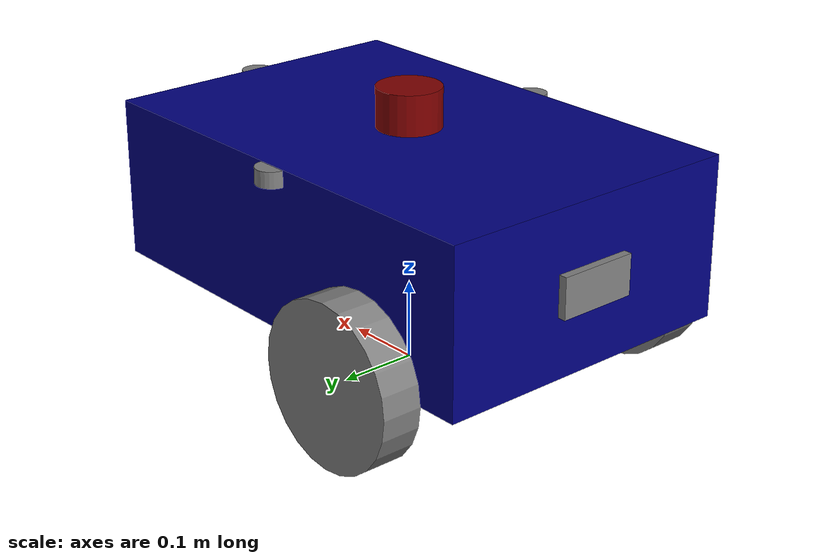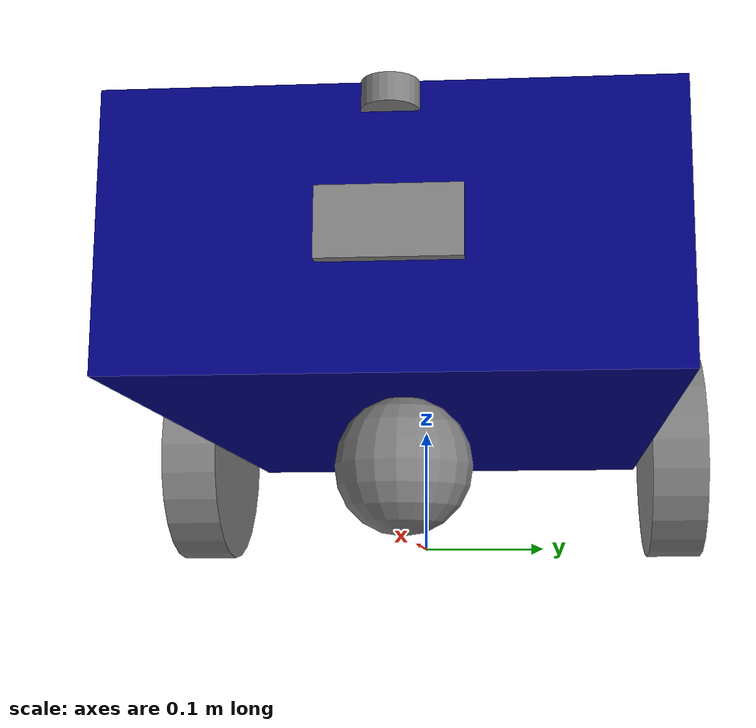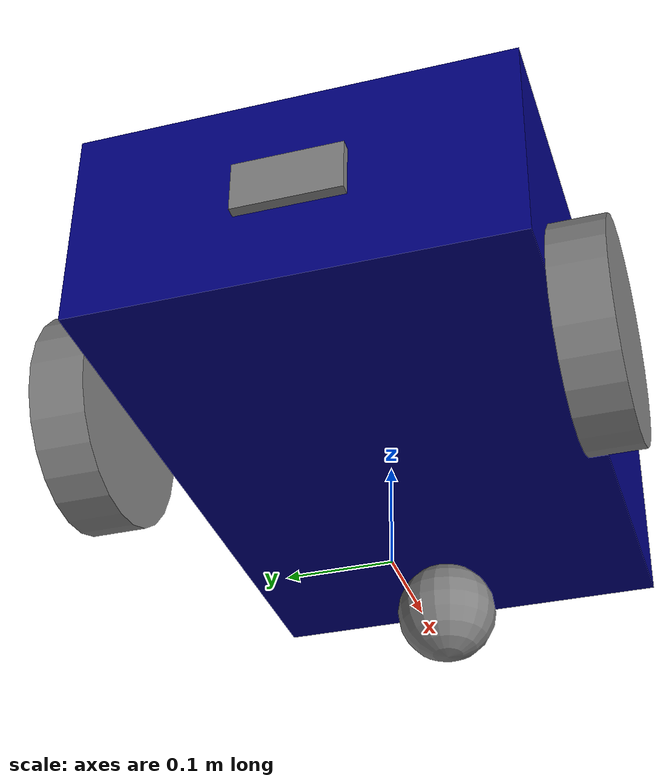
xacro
<?xml version="1.0"?>
<robot name="my_robot" xmlns:xacro="http://www.ros.org/wiki/xacro">

    <xacro:include filename="common_properties.xacro" />
    <xacro:include filename="mobile_base.xacro" />
    <xacro:include filename="mobile_base_gazebo.xacro" />

    <xacro:arg name="with_depth_cameras" default="true" />
    <xacro:arg name="with_rear_camera" default="true" />
    <xacro:arg name="cam_width" default="320" />
    <xacro:arg name="cam_height" default="240" />
    <xacro:arg name="cam_rate" default="10.0" />
    <xacro:arg name="cam_visualize" default="false" />
    <xacro:arg name="cam_hfov" default="1.5" />
    <xacro:arg name="cam_noise_stddev" default="0.001" />
    <xacro:if value="$(arg with_depth_cameras)">
        <xacro:include filename="camera.xacro" />
    </xacro:if>

    <xacro:include filename="lidar.xacro" />
    <xacro:include filename="imu.xacro" />
    <xacro:include filename="sonic_radar.xacro" />
    <xacro:include filename="gps_module.xacro" />

</robot>

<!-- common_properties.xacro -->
<robot xmlns:xacro="http://www.ros.org/wiki/xacro">

    <material name ="blue">
        <color rgba="0 0 0.5 1" />
    </material>

    <material name ="grey">
        <color rgba="0.5 0.5 0.5 1" />
    </material>

    <material name ="red">
        <color rgba="0.5 0 0 1" />
    </material>

    <xacro:macro name="box_inertia" params="m l w h xyz rpy">
        <inertial>
            <origin xyz="${xyz}" rpy="${rpy}" />
            <mass value="${m}" />
            <inertia ixx="${(m/12) * (h*h + l*l)}" ixy="0" ixz="0"
                     iyy="${(m/12) * (w*w + l*l)}" iyz="0"
                     izz="${(m/12) * (w*w + h*h)}" />
        </inertial>
    </xacro:macro>

    <xacro:macro name="cylinder_inertia" params="m r h xyz rpy">
        <inertial>
            <origin xyz="${xyz}" rpy="${rpy}" />
            <mass value="${m}" />
            <inertia ixx="${(m/12) * (3*r*r + h*h)}" ixy="0" ixz="0"
                     iyy="${(m/12) * (3*r*r + h*h)}" iyz="0"
                     izz="${(m/2) * (r*r)}" />
        </inertial>
    </xacro:macro>

    <xacro:macro name="spere_inertia" params="m r xyz rpy">
        <inertial>
            <origin xyz="${xyz}" rpy="${rpy}" />
            <mass value="${m}" />
            <inertia ixx="${(2*m/5) * (r*r)}" ixy="0" ixz="0"
                     iyy="${(2*m/5) * (r*r)}"  iyz="0"
                     izz="${(2*m/5) * (r*r)}" />
        </inertial>
    </xacro:macro>

</robot>

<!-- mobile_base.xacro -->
<robot xmlns:xacro="http://www.ros.org/wiki/xacro">

    <xacro:property name="base_length" value="0.6" />
    <xacro:property name="base_width" value="0.4" />
    <xacro:property name="base_height" value="0.2" />
    <xacro:property name="wheel_radius" value="0.1" />
    <xacro:property name="wheel_length" value="0.05" />

    <xacro:macro name="wheel_link" params="prefix">
        <link name="${prefix}_wheel_link">
            <visual>
                <geometry>
                    <cylinder radius="${wheel_radius}" length="${wheel_length}" />
                </geometry>
                <origin xyz="0 0 0" rpy="${pi / 2.0} 0 0" />
                <material name="grey" />
            </visual>
            <collision>
                <geometry>
                    <cylinder radius="${wheel_radius}" length="${wheel_length}" />
                </geometry>
                <origin xyz="0 0 0" rpy="${pi / 2.0} 0 0" />
            </collision>
            <xacro:cylinder_inertia m="1.0" r="${2*wheel_radius}" h="${2*wheel_length}"
                                    xyz="0 0 0" rpy="${pi / 2.0} 0 0" />
        </link>
    </xacro:macro>

    <link name="footprint_link" />

    <link name="base_link">
        <visual>
            <geometry>
                <box size="${base_length} ${base_width} ${base_height}" />
            </geometry>
            <origin xyz="0 0 ${(base_height / 2.0)}" rpy="0 0 0" />
            <material name="blue" />
        </visual>
        <collision>
            <geometry>
                <box size="${base_length} ${base_width} ${base_height}" />
            </geometry>
            <origin xyz="0 0 ${(base_height / 2.0)}" rpy="0 0 0" />
        </collision>
        <xacro:box_inertia m="5.0" l="${2*base_length}" w="${2*base_width}" h="${2*base_height}"
                           xyz="0 0 ${(base_height / 2.0)}" rpy="0 0 0" />
    </link>

    <joint name="base_footprint_joint" type="fixed">
        <parent link="footprint_link" />
        <child link="base_link" />
        <origin xyz="0 0 ${wheel_radius}" rpy="0 0 0" />
        <axis xyz="0 0 0" />
    </joint>

    <xacro:wheel_link prefix="right" />
    <xacro:wheel_link prefix="left" />

    <link name="caster_wheel_link">
        <visual>
            <geometry>
                <sphere radius="${wheel_radius / 2.0}" />
            </geometry>
            <origin xyz="0 0 0" rpy="0 0 0" />
            <material name="grey" />
        </visual>
        <collision>
            <geometry>
                <sphere radius="${wheel_radius / 2.0}" />
            </geometry>
            <origin xyz="0 0 0" rpy="0 0 0" />
        </collision>
        <xacro:spere_inertia m="0.5" r="${2*wheel_radius / 2.0}"
                                xyz="0 0 0" rpy="0 0 0" />
    </link>

    <joint name="base_right_wheel_joint" type="continuous">
        <parent link="base_link" />
        <child link="right_wheel_link" />
        <origin xyz="${-base_length / 4.0} ${-(base_width + wheel_length)/ 2.0} 0" rpy="0 0 0" />
        <axis xyz="0 1 0" />
    </joint>

    <joint name="base_left_wheel_joint" type="continuous">
        <parent link="base_link" />
        <child link="left_wheel_link" />
        <origin xyz="${-base_length / 4.0} ${(base_width + wheel_length)/ 2.0} 0" rpy="0 0 0" />
        <axis xyz="0 1 0" />
    </joint>

    <joint name="base_caster_wheel_joint" type="fixed">
        <parent link="base_link" />
        <child link="caster_wheel_link" />
        <origin xyz="${base_length / 3.0} 0 ${-wheel_radius / 2.0}" rpy="0 0 0" />
        <axis xyz="0 0 0" />
    </joint>

</robot>

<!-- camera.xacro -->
<robot xmlns:xacro="http://www.ros.org/wiki/xacro">

    <xacro:property name="camera_length" value="0.01" />
    <xacro:property name="camera_width" value="0.1" />
    <xacro:property name="camera_height" value="0.05" />
    <!-- Шум глубины включается только при явно заданном stddev. При нулевом
         значении блок noise ломает depth-камеру в Gazebo Classic. -->
    <xacro:property name="noise_on" value="${float('$(arg cam_noise_stddev)') > 0.0}" />

    <link name="camera_link">
        <visual>
            <geometry>
                <box size="${camera_length} ${camera_width} ${camera_height}" />
            </geometry>
            <material name="grey" />
        </visual>
        <collision>
            <geometry>
                <box size="${camera_length} ${camera_width} ${camera_height}" />
            </geometry>
        </collision>
        <xacro:box_inertia m="0.1" l="${camera_length}" w="${camera_width}" h="${camera_height}"
                           xyz="0 0 0" rpy="0 0 0" />
    </link>

    <joint name="base_camera_joint" type="fixed">
        <parent link="base_link" />
        <child link="camera_link" />
        <origin xyz="${(base_length + camera_length) / 2.0} 0 ${base_height / 2.0}" rpy="0 0 0" />
    </joint>

    <link name="camera_link_optical">
        <inertial>
        <origin xyz="0 0 0" rpy="0 0 0" />
        <mass value="0.001" />
        <inertia ixx="1e-9" ixy="0" ixz="0"
                 iyy="1e-9" iyz="0"
                 izz="1e-9" />
        </inertial>
    </link>

    <joint name="camera_optical_joint" type="fixed">
        <!-- these values have to be these values otherwise the gazebo camera
            image won't be aligned properly with the frame it is supposedly
            originating from -->
        <origin xyz="0 0 0" rpy="${-pi/2} 0 ${-pi/2}"/>
        <parent link="camera_link"/>
        <child link="camera_link_optical"/>
    </joint>

    <gazebo reference="camera_link">
        <material>Gazebo/Grey</material>
        <sensor name="depth_camera" type="depth">
            <visualize>$(arg cam_visualize)</visualize>
            <update_rate>$(arg cam_rate)</update_rate>
            <camera>
                <horizontal_fov>$(arg cam_hfov)</horizontal_fov>
                <image>
                    <width>$(arg cam_width)</width>
                    <height>$(arg cam_height)</height>
                    <format>R8G8B8</format>
                </image>
                <clip>
                    <near>0.05</near>
                    <far>6.0</far>
                </clip>
                <xacro:if value="${noise_on}">
                    <noise>
                        <type>gaussian</type>
                        <mean>0.0</mean>
                        <stddev>$(arg cam_noise_stddev)</stddev>
                    </noise>
                </xacro:if>
            </camera>
            <plugin name="depth_camera_controller" filename="libgazebo_ros_camera.so">
                <frame_name>camera_link_optical</frame_name>
                <pointCloudCutoff>0.3</pointCloudCutoff>
                <pointCloudCutoffMax>6.0</pointCloudCutoffMax>
            </plugin>
        </sensor>
    </gazebo>

    <xacro:if value="$(arg with_rear_camera)">
    <!-- ===== вторая depth-камера, смотрит назад =====  -->
    <link name="camera_rear_link">
        <visual>
            <geometry>
                <box size="${camera_length} ${camera_width} ${camera_height}" />
            </geometry>
            <material name="grey" />
        </visual>
        <collision>
            <geometry>
                <box size="${camera_length} ${camera_width} ${camera_height}" />
            </geometry>
        </collision>
        <xacro:box_inertia m="0.1" l="${camera_length}" w="${camera_width}" h="${camera_height}"
                           xyz="0 0 0" rpy="0 0 0" />
    </link>

    <joint name="base_camera_rear_joint" type="fixed">
        <parent link="base_link" />
        <child link="camera_rear_link" />
        <origin xyz="${-(base_length + camera_length) / 2.0} 0 ${base_height / 2.0}"
                rpy="0 0 ${pi}" />
    </joint>

    <link name="camera_rear_link_optical">
        <inertial>
            <origin xyz="0 0 0" rpy="0 0 0" />
            <mass value="0.001" />
            <inertia ixx="1e-9" ixy="0" ixz="0" iyy="1e-9" iyz="0" izz="1e-9" />
        </inertial>
    </link>

    <joint name="camera_rear_optical_joint" type="fixed">
        <origin xyz="0 0 0" rpy="${-pi/2} 0 ${-pi/2}"/>
        <parent link="camera_rear_link"/>
        <child link="camera_rear_link_optical"/>
    </joint>

    <gazebo reference="camera_rear_link">
        <material>Gazebo/Grey</material>
        <sensor name="depth_camera_rear" type="depth">
            <visualize>$(arg cam_visualize)</visualize>
            <update_rate>$(arg cam_rate)</update_rate>
            <camera>
                <horizontal_fov>$(arg cam_hfov)</horizontal_fov>
                <image>
                    <width>$(arg cam_width)</width>
                    <height>$(arg cam_height)</height>
                    <format>R8G8B8</format>
                </image>
                <clip>
                    <near>0.05</near>
                    <far>6.0</far>
                </clip>
                <xacro:if value="${noise_on}">
                    <noise>
                        <type>gaussian</type>
                        <mean>0.0</mean>
                        <stddev>$(arg cam_noise_stddev)</stddev>
                    </noise>
                </xacro:if>
            </camera>
            <plugin name="depth_camera_rear_controller" filename="libgazebo_ros_camera.so">
                <frame_name>camera_rear_link_optical</frame_name>
                <pointCloudCutoff>0.3</pointCloudCutoff>
                <pointCloudCutoffMax>6.0</pointCloudCutoffMax>
            </plugin>
        </sensor>
    </gazebo>
    </xacro:if>
</robot>

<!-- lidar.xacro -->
<robot xmlns:xacro="http://www.ros.org/wiki/xacro">

    <xacro:property name="lidar_radius" value="0.04" />
    <xacro:property name="lidar_height" value="0.05" />

    <link name="lidar_link">
        <visual>
            <geometry>
                <cylinder radius="${lidar_radius}" length="${lidar_height}" />
            </geometry>
            <origin xyz="0 0 0" rpy="0 0 0" />
            <material name="red" />
        </visual>
        <collision>
            <geometry>
                <cylinder radius="${lidar_radius}" length="${lidar_height}" />
            </geometry>
            <origin xyz="0 0 0" rpy="0 0 0" />
        </collision>
        <xacro:cylinder_inertia m="0.1" r="${lidar_radius}" h="${lidar_height}"
                                xyz="0 0 0" rpy="0 0 0" />
    </link>

    <joint name="base_lidar_joint" type="fixed">
        <parent link="base_link" />
        <child link="lidar_link" />
        <origin xyz="0 0 ${base_height + lidar_height / 2.0}" rpy="0 0 0" />
    </joint>

    <gazebo reference="lidar_link">
        <material>Gazebo/Red</material>
        <sensor name="lidar" type="ray">
            <visualize>false</visualize>
            <update_rate>15.0</update_rate>
            <ray>
                <scan>
                    <horizontal>
                        <samples>720</samples>
                        <resolution>1</resolution>
                        <min_angle>-3.14159265</min_angle>
                        <max_angle>3.14159265</max_angle>
                    </horizontal>
                </scan>
                <range>
                    <min>0.12</min>
                    <max>12.0</max>
                    <resolution>0.01</resolution>
                </range>
            </ray>
            <plugin name="lidar_controller" filename="libgazebo_ros_ray_sensor.so">
                <ros>
                    <remapping>~/out:=/scan_lidar</remapping>
                </ros>
                <output_type>sensor_msgs/LaserScan</output_type>
                <radiation_type>infrared</radiation_type>
                <frame_name>lidar_link</frame_name>
            </plugin>
        </sensor>
    </gazebo>

</robot>

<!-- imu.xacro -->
<robot xmlns:xacro="http://www.ros.org/wiki/xacro">

    <!--
    ===== IMU ======
    гравитация даёт тангаж и крен, поворот по гироскопу
    устойчивее визуальной/скановой одометрии
    -->

    <link name="imu_link">
        <visual>
            <geometry><box size="0.03 0.03 0.01"/></geometry>
            <material name="red"/>
        </visual>
        <collision>
            <geometry><box size="0.03 0.03 0.01"/></geometry>
        </collision>
        <xacro:box_inertia m="0.01" l="0.03" w="0.03" h="0.01" xyz="0 0 0" rpy="0 0 0"/>
    </link>

    <joint name="base_imu_joint" type="fixed">
        <parent link="base_link"/>
        <child link="imu_link"/>
        <origin xyz="0 0 ${base_height / 2.0}" rpy="0 0 0"/>
    </joint>

    <gazebo reference="imu_link">
        <sensor name="imu_sensor" type="imu">
            <always_on>true</always_on>
            <update_rate>100</update_rate>
            <visualize>true</visualize>
            <plugin name="imu_plugin" filename="libgazebo_ros_imu_sensor.so">
                <ros>
                    <remapping>~/out:=/imu/data</remapping>
                </ros>
                <initial_orientation_as_reference>false</initial_orientation_as_reference>
            </plugin>
        </sensor>
    </gazebo>

</robot>

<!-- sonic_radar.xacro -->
<robot xmlns:xacro="http://www.ros.org/wiki/xacro">

    <xacro:property name="radar_radius" value="0.02" />
    <xacro:property name="radar_length" value="0.02" />

    <xacro:macro name="ultrasonic_sensor" params="prefix xyz rpy">
        <link name="${prefix}_ultrasonic_link">
            <visual>
                <geometry><cylinder radius="0.02" length="0.02"/></geometry>
                <material name="grey"/>
            </visual>
            <collision>
                <geometry><cylinder radius="0.02" length="0.02"/></geometry>
            </collision>
            <xacro:cylinder_inertia m="0.05" r="0.02" h="0.02" xyz="0 0 0" rpy="0 0 0"/>
        </link>

        <joint name="${prefix}_ultrasonic_joint" type="fixed">
            <parent link="base_link"/>
            <child link="${prefix}_ultrasonic_link"/>
            <origin xyz="${xyz}" rpy="${rpy}"/>
        </joint>

        <gazebo reference="${prefix}_ultrasonic_link">
            <sensor name="${prefix}_ultrasonic" type="ray">
                <pose>0 0 0 0 0 0</pose>
                <visualize>false</visualize>
                <update_rate>20</update_rate>
                <ray>
                    <scan>
                        <horizontal>
                            <samples>1</samples>
                            <resolution>1</resolution>
                            <min_angle>0</min_angle>
                            <max_angle>0</max_angle>
                        </horizontal>
                    </scan>
                    <range>
                        <min>0.02</min>
                        <max>4.0</max>
                        <resolution>0.01</resolution>
                    </range>
                </ray>
                <plugin name="${prefix}_ultrasonic_controller" filename="libgazebo_ros_ray_sensor.so">
                    <ros>
                        <remapping>~/out:=/${prefix}_ultrasonic/range</remapping>
                    </ros>
                    <output_type>sensor_msgs/Range</output_type>
                    <radiation_type>ultrasound</radiation_type>
                    <frame_name>${prefix}_ultrasonic_link</frame_name>
                </plugin>
            </sensor>
        </gazebo>
    </xacro:macro>

    <xacro:ultrasonic_sensor prefix="front" xyz="${(base_length) / 2.0} 0 ${base_height - (radar_length)/2.0- 0.001}" rpy="0 0 0"/>
    <xacro:ultrasonic_sensor prefix="left" xyz="0 ${(base_width) / 2.0} ${base_height - (radar_length)/2.0 - 0.001}" rpy="0 0 ${pi/2}"/>
    <xacro:ultrasonic_sensor prefix="right" xyz="0 ${(- base_width) / 2.0} ${base_height - (radar_length)/2.0 - 0.001}" rpy="0 0 ${-pi/2}"/>

</robot>

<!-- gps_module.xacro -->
<robot xmlns:xacro="http://www.ros.org/wiki/xacro">
    <link name="gps_link">
        <visual>
            <geometry><box size="0.05 0.05 0.02"/></geometry>
            <material name="grey"/>
        </visual>
        <collision>
            <geometry><box size="0.05 0.05 0.02"/></geometry>
        </collision>
        <xacro:box_inertia m="0.1" l="0.05" w="0.05" h="0.02" xyz="0 0 0" rpy="0 0 0"/>
    </link>

    <joint name="base_gps_joint" type="fixed">
        <parent link="base_link"/>
        <child link="gps_link"/>
        <origin xyz="0 0 ${base_height}" rpy="0 0 0"/>
    </joint>

    <gazebo reference="gps_link">
        <sensor name="gps_sensor" type="gps">
            <pose>0 0 0 0 0 0</pose>
            <visualize>true</visualize>
            <update_rate>10</update_rate>
            <plugin name="gps_controller" filename="libgazebo_ros_gps_sensor.so">
                <ros>
                    <remapping>~/out:=/gps/fix</remapping>
                </ros>
                <frame_name>gps_link</frame_name>
            </plugin>
        </sensor>
    </gazebo>
</robot>
